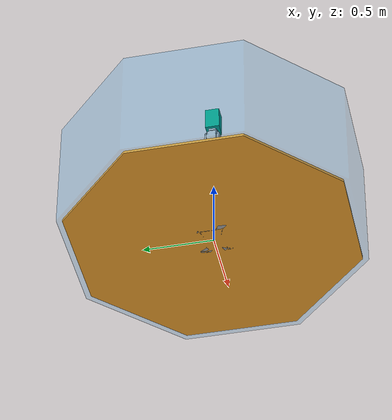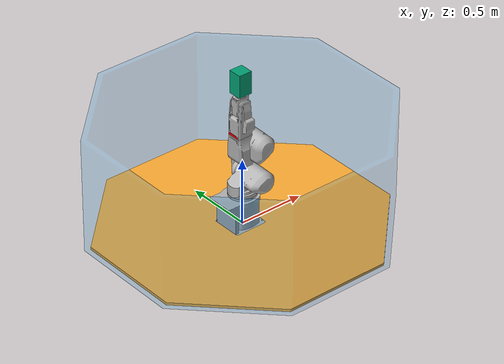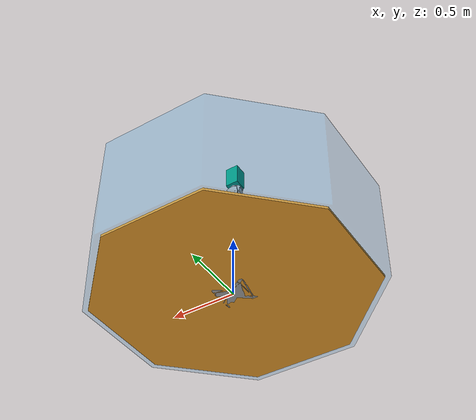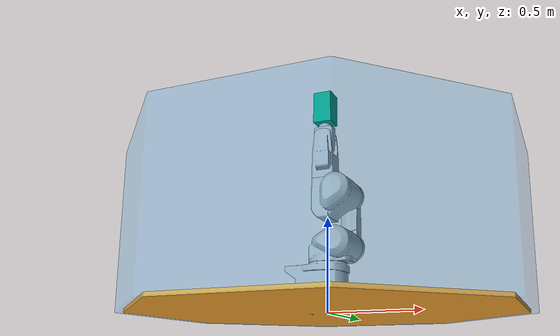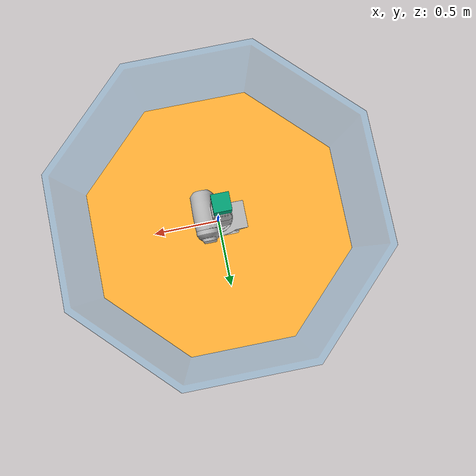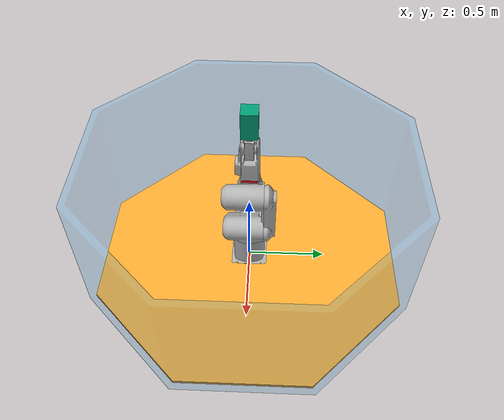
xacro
<?xml version="1.0"?>
<robot xmlns:xacro="http://ros.org/wiki/xacro" name="mitsubishi_arm">
  <property name="PI" value="3.1415926535897931" />

  <link name="world"/>

  <link name="planning_tip">
    <origin xyz="0 0 0" rpy="0 0 0"/>
  </link>

  <joint name="planning_tip_to_robot" type="fixed">
    <parent link="disc"/>
    <child link="planning_tip"/>
    <origin xyz="0 0 0.315" rpy="0 0 0"/>
  </joint>

  <link name="gripper">
		 <visual>
				<geometry>
					<box size="0.1 0.1 0.17"/>
				</geometry>
        <origin xyz="0 0 0.085" rpy="0 0 0"/>
	 	 </visual>
		 <collision>
				<geometry>
          <box size="0.1 0.1 0.17"/>
				</geometry>
        <origin xyz="0 0 0.085" rpy="0 0 0"/>
			</collision>
  </link>

  <joint name="gripper_to_last_robot_frame" type="fixed">
    <parent link="last_robot_frame"/>
    <child link="gripper"/>
  </joint>

  <link name="last_robot_frame">
    <origin xyz="0 0 -0.0" rpy="0 0 0"/>
  </link>
  <joint name="last_robot_frame_to_robot" type="fixed">
    <parent link="disc"/>
    <child link="last_robot_frame"/>
    <origin xyz="0 0 0.023" rpy="0 0 0"/>
  </joint>

  <joint name="fixed" type="fixed">
    <parent link="world"/>
    <child link="base_link"/>
  </joint>

	<link name="limiting_plain">
		 <visual>
				<geometry>
					<box size="0 0 0."/>
				</geometry>
					<material name="transparent_red">
					<color rgba="1 0 0 0.5"/>
				</material>
	 	 </visual>
		 <collision>
				<geometry>
					<box size="10 10 0.001"/>
				</geometry>
					<material name="transparent_red">
					<color rgba="1 0 0 0.5"/>
				</material>
			</collision>
	</link>
  <joint name="limiting_plain_to_base_link" type="fixed">
    <parent link="base_link"/>
    <child link="limiting_plain"/>
		<origin xyz="0 0 0.06"/>
  </joint>
  <!-- LINKS   -->
  <xacro:include filename="$(find mitsubishi_arm_description)/urdf/mitsubishi_rv_6s_arm.xacro" />

	<!-- Add table -->
	<link name="table">
		<visual>
			<geometry>
				<mesh filename="package://mitsubishi_arm_description/meshes/rv-6s/rv-6s_table.stl" scale="0.001 0.001 0.001"/>
			</geometry>
			<origin xyz="0 0 0" rpy="0 0 0"/>
			<material name="wood">
				<color rgba="1 0.678 0.2 1"/>
			</material>
		</visual>
		<collision>
			<geometry>
				<mesh filename="package://mitsubishi_arm_description/meshes/rv-6s/rv-6s_table.stl" scale="0.001 0.001 0.001"/>
			</geometry>
			<origin xyz="0 0 0" rpy="0 0 0"/>
			<material name="wood">
				<color rgba="1 0.678 0.2 1"/>
			</material>
		</collision>
	</link>

	<!-- Connect robot to the table -->
	<joint name="robot_to_table" type="fixed">
		<origin xyz="0.0 0.0 0" rpy="0 0 0"/>
		<parent link="base_link"/>
		<child link="table"/>
	</joint>

	<!-- Add cage -->
	<link name="cage">
		<visual>
			<geometry>
				<mesh filename="package://mitsubishi_arm_description/meshes/rv-6s/rv-6s_cage.stl" scale="0.001 0.001 0.001"/>
			</geometry>
			<origin xyz="0 0 0" rpy="0 0 0"/>
			<material name="light_blue_transparent">
				<color rgba="0 0.54117 0.9019 0.2"/>
			</material>
		</visual>
		<collision>
			<geometry>
				<mesh filename="package://mitsubishi_arm_description/meshes/rv-6s/rv-6s_cage.stl" scale="0.001 0.001 0.001"/>
			</geometry>
			<origin xyz="0 0 0" rpy="0 0 0"/>
			<material name="light_blue_transparent">
				<color rgba="0 0.54117 0.9019 0.2"/>
			</material>
		</collision>
	</link>

	<joint name="robot_to_cage" type="fixed">
		<origin xyz="0.0 0.0 0" rpy="0 0 0"/>
    <parent link="base_link"/>
    <child link="cage"/>
	</joint>

</robot>

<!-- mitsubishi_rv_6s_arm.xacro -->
<robot xmlns:xacro="http://www.ros.org/wiki/xacro">
  <property name="PI" value="3.1415926535897931" />
  <property name="offset_from_limit" value="5.0" />
  <property name="joint_velocity" value="5.0" />
  <property name="J4d" value="0.1" />

  <!-- base_link -->
  <link name="base_link" >
    <visual>
      <geometry>
          <mesh filename="package://mitsubishi_arm_description/meshes/rv-6s/rv-6s_base.stl" scale="0.001 0.001 0.001"/>
      </geometry>
      <origin rpy="${PI/2} 0 ${PI/2}"/>
      <material name="gray">
          <color rgba="0.7 0.7 0.7 1"/>
      </material>
    </visual>
    <collision>
      <geometry>
          <mesh filename="package://mitsubishi_arm_description/collision/rv-6s/rv-6s_base.stl" scale="0.001 0.001 0.001"/>
      </geometry>
      <origin rpy="${PI/2} 0 ${PI/2}"/>
    </collision>
    <inertial>
      <origin xyz="0 0 1" rpy="0 0 0"/>
      <mass value="0.01"/>
      <inertia
          ixx="1.0" ixy="0.0" ixz="0.0"
          iyy="1.0" iyz="0.0"
          izz="1.0"/>
  </inertial>
  </link>

  <joint name="j1" type="revolute">
      <axis xyz="0 0 1"/>
      <limit effort="1000.0" lower="${(-170+offset_from_limit)*PI/180}" upper="${(170-offset_from_limit)*PI/180}" velocity="${joint_velocity}"/>
      <parent link="base_link"/>
      <child link="shoulder"/>
      <origin xyz="0 0 0.239"/>
      <dynamics damping="100.0" friction="100.0" />
  </joint>

  <!-- shoulder-->
  <link name="shoulder">
      <visual>
          <geometry>
              <mesh filename="package://mitsubishi_arm_description/meshes/rv-6s/rv-6s_shoulder.stl" scale="0.001 0.001 0.001"/>
          </geometry>
          <origin xyz="0 0 0.038" rpy="${PI/2} 0 ${PI/2}"/>
          <material name="grey">
              <color rgba="0.7 0.7 0.7 1"/>
          </material>
      </visual>
      <collision>
          <geometry>
				  <mesh filename="package://mitsubishi_arm_description/collision/rv-6s/rv-6s_shoulder.stl" scale="0.001 0.001 0.001"/>
          </geometry>
          <origin xyz="0 0 0.038" rpy="${PI/2} 0 ${PI/2}"/>
      </collision>
      <inertial>
          <origin xyz="0 0 1" rpy="0 0 0"/>
          <mass value="0.01"/>
          <inertia
              ixx="1.0" ixy="0.0" ixz="0.0"
              iyy="1.0" iyz="0.0"
              izz="1.0"/>
      </inertial>
  </link>

  <joint name="j2" type="revolute">
      <axis xyz="0 0 1"/>
      <limit effort="1000.0" lower="${-92*PI/180}" upper="${(135-offset_from_limit)*PI/180}" velocity="${joint_velocity}"/>
      <parent link="shoulder"/>
      <child link="upper_arm"/>
      <origin xyz="0.085 0 0.111" rpy="${PI/2} 0 ${PI}"/>
      <dynamics damping="100.0" friction="100.0" />
  </joint>

  <!-- upper_arm -->
  <link name="upper_arm">
      <visual>
          <geometry>
              <mesh filename="package://mitsubishi_arm_description/meshes/rv-6s/rv-6s_no1arm.stl" scale="0.001 0.001 0.001"/>
          </geometry>
          <origin xyz="0 0 0.113" rpy="0 ${-PI/2} 0"/>
          <material name="grey">
              <color rgba="0.7 0.7 0.7 1"/>
          </material>
      </visual>
      <collision>
          <geometry>
              <mesh filename="package://mitsubishi_arm_description/collision/rv-6s/rv-6s_no1arm.stl" scale="0.001 0.001 0.001"/>
          </geometry>
          <origin xyz="0 0 0.113" rpy="0 ${-PI/2} 0"/>
      </collision>
      <inertial>
          <origin xyz="0 0 1" rpy="0 0 0"/>
          <mass value="0.01"/>
          <inertia
              ixx="1.0" ixy="0.0" ixz="0.0"
              iyy="1.0" iyz="0.0"
              izz="1.0"/>
      </inertial>
  </link>

  <joint name="j3" type="revolute">
      <axis xyz="0 0 1"/>
      <limit effort="1000.0" lower="${(-107+offset_from_limit)*PI/180}" upper="${(166-offset_from_limit)*PI/180}" velocity="${joint_velocity}"/>
      <parent link="upper_arm"/>
      <child link="elbow"/>
      <origin xyz="0 0.28 0.0" rpy="0 0 ${PI/2}"/>
      <dynamics damping="100.0" friction="100.0" />
  </joint>

  <!-- elbow -->
  <link name="elbow">
      <visual>
          <geometry>
              <mesh filename="package://mitsubishi_arm_description/meshes/rv-6s/rv-6s_elbow.stl" scale="0.001 0.001 0.001"/>
          </geometry>
          <origin xyz="0 0 0.1055" rpy="0 ${-PI/2} ${PI}"/>
          <material name="grey">
              <color rgba="0.7 0.7 0.7 1"/>
          </material>
      </visual>
      <collision>
          <geometry>
              <mesh filename="package://mitsubishi_arm_description/collision/rv-6s/rv-6s_elbow.stl" scale="0.001 0.001 0.001"/>
          </geometry>
          <origin xyz="0 0 0.1055" rpy="0 ${-PI/2} ${PI}"/>
      </collision>
      <inertial>
          <origin xyz="0 0 1" rpy="0 0 0"/>
          <mass value="0.01"/>
          <inertia
              ixx="1.0" ixy="0.0" ixz="0.0"
              iyy="1.0" iyz="0.0"
              izz="1.0"/>
      </inertial>
  </link>

  <joint name="j4" type="revolute">
      <axis xyz="0 0 1"/>
      <limit effort="1000.0" lower="${(-160+offset_from_limit)*PI/180}" upper="${(160-offset_from_limit)*PI/180}" velocity="${joint_velocity}"/>
      <parent link="elbow"/>
      <child link="fore_arm"/>
			<origin xyz="${J4d} ${-0.1+0.0000} -0.00"  rpy="0 ${PI/2} 0"/>
      <dynamics damping="100.0" friction="100.0" />
  </joint>

  <!-- fore_arm -->
  <link name="fore_arm">
      <visual>
          <geometry>
              <mesh filename="package://mitsubishi_arm_description/meshes/rv-6s/rv-6s_joint_arm.stl" scale="0.001 0.001 0.001"/>
          </geometry>
					<origin xyz="0.00035 -0.0002 -0.0003" rpy="0 0 ${PI}"/>
          <material name="grey">
              <color rgba="0.7 0.7 0.7 1"/>
          </material>
	  <origin xyz="0 0 0.0" rpy="0 0 ${PI}"/>
      </visual>
      		<visual>
          	<geometry>
							<box size="0.092 0.12 0.0165"/>
          	</geometry>
						<origin xyz="-0.00315 -0.0002 -0.0085" rpy="0 0 ${PI}"/>
						<material name="grey">
            	<color rgba="1 0 0. 1"/>
          	</material>
      		</visual>
      <collision>
          <geometry>
              <mesh filename="package://mitsubishi_arm_description/collision/rv-6s/rv-6s_joint_arm.stl" scale="0.001 0.001 0.001"/>
          </geometry>
					<origin xyz="0.00035 -0.0002 -0.0003" rpy="0 0 ${PI}"/>
          <material name="grey">
              <color rgba="0.7 0.7 0.7 1"/>
          </material>
      </collision>
			<collision>
          	<geometry>
							<box size="0.092 0.12 0.0165"/>
          	</geometry>
						<origin xyz="-0.00315 -0.0002 -0.0085" rpy="0 0 ${PI}"/>
						<material name="grey">
            	<color rgba="1 0 0. 1"/>
          	</material>
			</collision>
      <inertial>
          <origin xyz="0 0 1" rpy="0 0 0"/>
          <mass value="0.01"/>
          <inertia
              ixx="1.0" ixy="0.0" ixz="0.0"
              iyy="1.0" iyz="0.0"
              izz="1.0"/>
      </inertial>
  </link>

  <joint name="j5" type="revolute">
      <axis xyz="-1 0 0"/>
      <limit effort="1000.0" lower="${(-120+offset_from_limit)*PI/180}" upper="${(120-offset_from_limit)*PI/180}" velocity="${joint_velocity}"/>
      <parent link="fore_arm"/>
      <child link="wrist"/>
      <origin xyz="0.0 ${0} ${0.315-J4d}"  rpy="0.0 0 0"/>
      <dynamics damping="100.0" friction="100.0" />
  </joint>

  <!-- wrist -->
  <link name="wrist">
      <visual>
          <geometry>
              <mesh filename="package://mitsubishi_arm_description/meshes/rv-6s/rv-6s_wrist.stl" scale="0.001 0.001 0.001"/>
          </geometry>
					<origin xyz="-0.0065 0 0" rpy="0 0 ${-PI/2}"/>
          <material name="grey">
              <color rgba="0.7 0.7 0.7 1"/>
          </material>
      </visual>
      <collision>
          <geometry>
              <mesh filename="package://mitsubishi_arm_description/collision/rv-6s/rv-6s_wrist.stl" scale="0.001 0.001 0.001"/>
          </geometry>
					<origin xyz="-0.0065 0 0" rpy="0 0 ${-PI/2}"/>
          <material name="grey">
              <color rgba="0.7 0.7 0.7 1"/>
          </material>
      </collision>
      <inertial>
          <origin xyz="0 0 1" rpy="0 0 0"/>
          <mass value="0.01"/>
          <inertia
              ixx="1.0" ixy="0.0" ixz="0.0"
              iyy="1.0" iyz="0.0"
              izz="1.0"/>
      </inertial>
  </link>

	<!-- disc -->
	<link name="disc">
			<visual>
					<geometry>
							<mesh filename="package://mitsubishi_arm_description/meshes/rv-6s/rv-6s_disc.stl" scale="0.001 0.001 0.001"/>
					</geometry>
					<origin xyz="0.00 0 0.0"  rpy="${-PI/2} 0 ${0}"/>
					<material name="grey">
              <color rgba="0.7 0.7 0.7 1"/>
          </material>
			</visual>
			<collision>
					<geometry>
						<mesh filename="package://mitsubishi_arm_description/collision/rv-6s/rv-6s_disc.stl" scale="0.001 0.001 0.001"/>
					</geometry>
					<origin xyz="0.00 0 0.0"  rpy="${-PI/2} 0 ${0}"/>
					<material name="grey">
              <color rgba="0.7 0.7 0.7 1"/>
          </material>
			</collision>
      <inertial>
          <origin xyz="0 0 1" rpy="0 0 0"/>
          <mass value="0.01"/>
          <inertia
              ixx="1.0" ixy="0.0" ixz="0.0"
              iyy="1.0" iyz="0.0"
              izz="1.0"/>
      </inertial>
	</link>

  <joint name="j6" type="revolute">
      <axis xyz="0 0 1"/>
      <limit effort="1000.0" lower="${(-360+offset_from_limit)*PI/180}" upper="${(360-offset_from_limit)*PI/180}" velocity="${joint_velocity}"/>
      <parent link="wrist"/>
      <child link="disc"/>
      <origin xyz="${0.0} ${-0.0000} 0.062"  rpy="0 0 0"/>
      <dynamics damping="10.0" friction="100.0" />
  </joint>

  <transmission name="tran1">
      <type>transmission_interface/SimpleTransmission</type>
      <joint name="j1">
          <hardwareInterface>PositionJointInterface</hardwareInterface>
      </joint>
      <actuator name="motor1">
          <hardwareInterface>PositionJointInterface</hardwareInterface>
      </actuator>
  </transmission>

  <transmission name="tran2">
      <type>transmission_interface/SimpleTransmission</type>
      <joint name="j2">
          <hardwareInterface>PositionJointInterface</hardwareInterface>
      </joint>
      <actuator name="motor2">
          <hardwareInterface>PositionJointInterface</hardwareInterface>
      </actuator>
  </transmission>

  <transmission name="tran3">
      <type>transmission_interface/SimpleTransmission</type>
      <joint name="j3">
          <hardwareInterface>PositionJointInterface</hardwareInterface>
      </joint>
      <actuator name="motor3">
          <hardwareInterface>PositionJointInterface</hardwareInterface>
      </actuator>
  </transmission>

  <transmission name="tran4">
      <type>transmission_interface/SimpleTransmission</type>
      <joint name="j4">
          <hardwareInterface>PositionJointInterface</hardwareInterface>
      </joint>
      <actuator name="motor4">
          <hardwareInterface>PositionJointInterface</hardwareInterface>
      </actuator>
  </transmission>

  <transmission name="tran5">
      <type>transmission_interface/SimpleTransmission</type>
      <joint name="j5">
          <hardwareInterface>PositionJointInterface</hardwareInterface>
      </joint>
      <actuator name="motor5">
          <hardwareInterface>PositionJointInterface</hardwareInterface>
      </actuator>
  </transmission>

  <transmission name="tran6">
      <type>transmission_interface/SimpleTransmission</type>
      <joint name="j6">
          <hardwareInterface>PositionJointInterface</hardwareInterface>
      </joint>
      <actuator name="motor6">
          <hardwareInterface>PositionJointInterface</hardwareInterface>
      </actuator>
  </transmission>

</robot>
